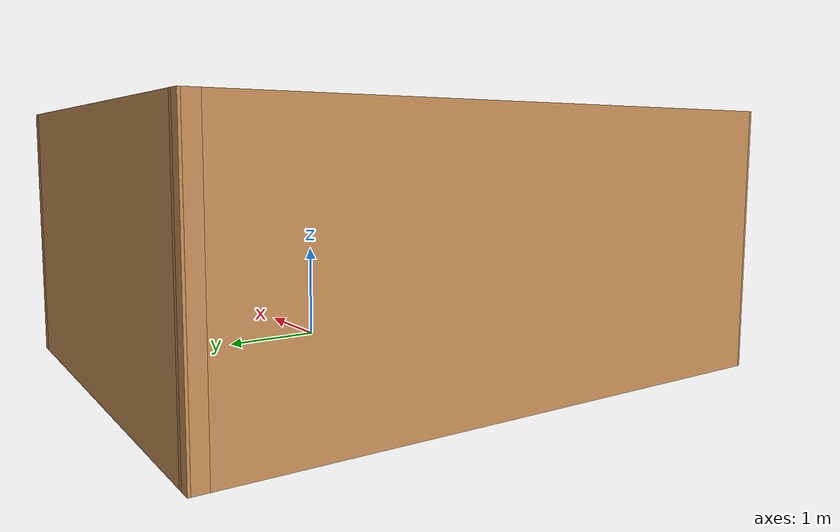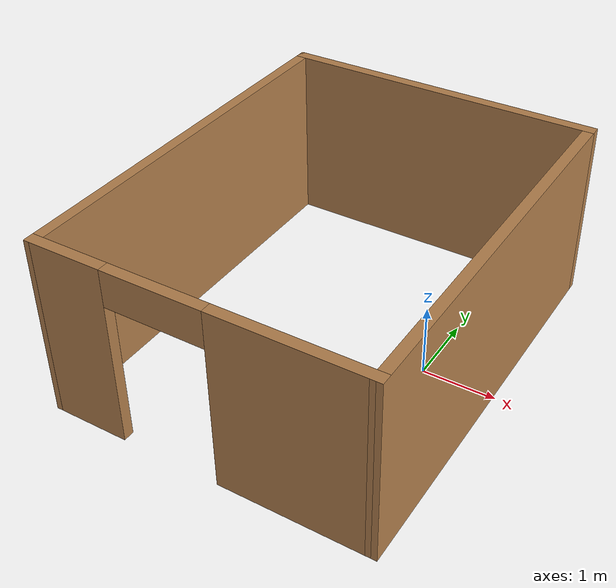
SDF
<?xml version='1.0'?>
<sdf version='1.6'>
  <model name='exterior'>
    <pose frame=''>-1.28295 -0.097641 0 0 -0 0</pose>
    <link name='Wall_3'>
      <collision name='Wall_3_Collision'>
        <geometry>
          <box>
            <size>5.664 0.15 2.5</size>
          </box>
        </geometry>
        <pose frame=''>0 0 1.25 0 -0 0</pose>
      </collision>
      <visual name='Wall_3_Visual'>
        <pose frame=''>0 0 1.25 0 -0 0</pose>
        <geometry>
          <box>
            <size>5.664 0.15 2.5</size>
          </box>
        </geometry>
        <material>
          <script>
            <uri>file://media/materials/scripts/gazebo.material</uri>
            <name>Gazebo/Wood</name>
          </script>
          <ambient>1 1 1 1</ambient>
        </material>
        <meta>
          <layer>0</layer>
        </meta>
      </visual>
      <pose frame=''>-2.173 0.000412 0 0 -0 -1.5708</pose>
    </link>
    <link name='Wall_5'>
      <pose frame=''>0 -2.757 0 0 -0 -0.00019</pose>
      <visual name='Wall_5_Visual_0'>
        <pose frame=''>-1.71473 0 1.25 0 -0 0</pose>
        <geometry>
          <box>
            <size>1.06654 0.15 2.5</size>
          </box>
        </geometry>
        <material>
          <script>
            <uri>file://media/materials/scripts/gazebo.material</uri>
            <name>Gazebo/Wood</name>
          </script>
          <ambient>1 1 1 1</ambient>
        </material>
        <meta>
          <layer>0</layer>
        </meta>
      </visual>
      <collision name='Wall_5_Collision_0'>
        <geometry>
          <box>
            <size>1.06654 0.15 2.5</size>
          </box>
        </geometry>
        <pose frame=''>-1.71473 0 1.25 0 -0 0</pose>
      </collision>
      <visual name='Wall_5_Visual_1'>
        <pose frame=''>1.20809 0 1.25 0 -0 0</pose>
        <geometry>
          <box>
            <size>2.07981 0.15 2.5</size>
          </box>
        </geometry>
        <material>
          <script>
            <uri>file://media/materials/scripts/gazebo.material</uri>
            <name>Gazebo/Wood</name>
          </script>
          <ambient>1 1 1 1</ambient>
        </material>
        <meta>
          <layer>0</layer>
        </meta>
      </visual>
      <collision name='Wall_5_Collision_1'>
        <geometry>
          <box>
            <size>2.07981 0.15 2.5</size>
          </box>
        </geometry>
        <pose frame=''>1.20809 0 1.25 0 -0 0</pose>
      </collision>
      <visual name='Wall_5_Visual_2'>
        <pose frame=''>-0.506635 0 2.25 0 -0 0</pose>
        <geometry>
          <box>
            <size>1.34964 0.15 0.5</size>
          </box>
        </geometry>
        <material>
          <script>
            <uri>file://media/materials/scripts/gazebo.material</uri>
            <name>Gazebo/Wood</name>
          </script>
          <ambient>1 1 1 1</ambient>
        </material>
        <meta>
          <layer>0</layer>
        </meta>
      </visual>
      <collision name='Wall_5_Collision_2'>
        <geometry>
          <box>
            <size>1.34964 0.15 0.5</size>
          </box>
        </geometry>
        <pose frame=''>-0.506635 0 2.25 0 -0 0</pose>
      </collision>
    </link>
    <link name='Wall_6'>
      <collision name='Wall_6_Collision'>
        <geometry>
          <box>
            <size>5.664 0.15 2.5</size>
          </box>
        </geometry>
        <pose frame=''>0 0 1.25 0 -0 0</pose>
      </collision>
      <visual name='Wall_6_Visual'>
        <pose frame=''>0 0 1.25 0 -0 0</pose>
        <geometry>
          <box>
            <size>5.664 0.15 2.5</size>
          </box>
        </geometry>
        <material>
          <script>
            <uri>file://media/materials/scripts/gazebo.material</uri>
            <name>Gazebo/Wood</name>
          </script>
          <ambient>1 1 1 1</ambient>
        </material>
        <meta>
          <layer>0</layer>
        </meta>
      </visual>
      <pose frame=''>2.173 -0.000412 0 0 -0 1.5708</pose>
    </link>
    <link name='Wall_8'>
      <collision name='Wall_8_Collision'>
        <geometry>
          <box>
            <size>4.496 0.15 2.5</size>
          </box>
        </geometry>
        <pose frame=''>0 0 1.25 0 -0 0</pose>
      </collision>
      <visual name='Wall_8_Visual'>
        <pose frame=''>0 0 1.25 0 -0 0</pose>
        <geometry>
          <box>
            <size>4.496 0.15 2.5</size>
          </box>
        </geometry>
        <material>
          <script>
            <uri>file://media/materials/scripts/gazebo.material</uri>
            <name>Gazebo/Wood</name>
          </script>
          <ambient>1 1 1 1</ambient>
        </material>
        <meta>
          <layer>0</layer>
        </meta>
      </visual>
      <pose frame=''>0 2.757 0 0 -0 3.1414</pose>
    </link>
    <static>1</static>
  </model>
</sdf>
